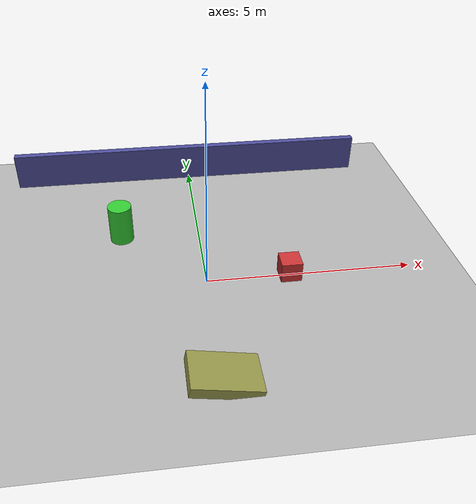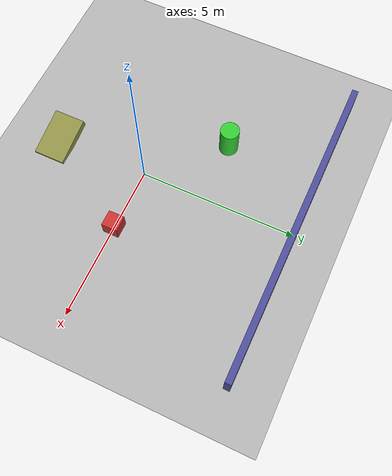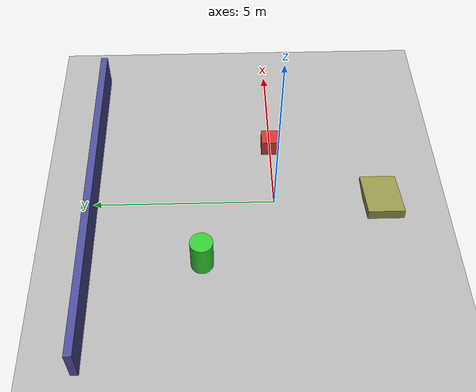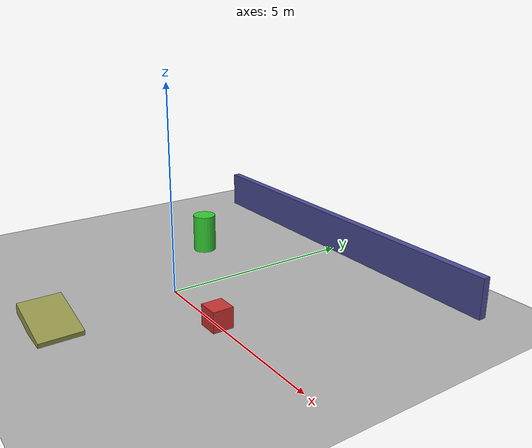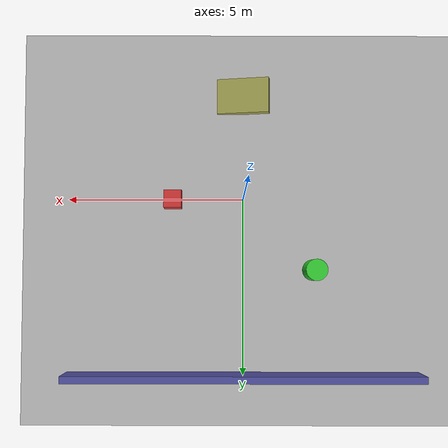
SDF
<?xml version="1.0" ?>
<!--
  Complex World - With Obstacles and Varied Terrain
  Purpose: Testing robot navigation and collision avoidance
  Features: Multiple obstacles, ramps, walls
-->
<sdf version="1.9">
  <world name="complex_world">

    <!-- Physics: Bullet engine with 1ms timestep -->
    <physics name="1ms" type="bullet">
      <max_step_size>0.001</max_step_size>
      <real_time_factor>1.0</real_time_factor>
      <real_time_update_rate>1000</real_time_update_rate>
    </physics>

    <gravity>0 0 -9.81</gravity>

    <!-- Ground Plane -->
    <model name="ground_plane">
      <static>true</static>
      <link name="link">
        <collision name="collision">
          <geometry>
            <plane>
              <normal>0 0 1</normal>
              <size>100 100</size>
            </plane>
          </geometry>
        </collision>
        <visual name="visual">
          <geometry>
            <plane>
              <normal>0 0 1</normal>
              <size>100 100</size>
            </plane>
          </geometry>
          <material>
            <ambient>0.5 0.5 0.5 1</ambient>
            <diffuse>0.7 0.7 0.7 1</diffuse>
          </material>
        </visual>
      </link>
    </model>

    <!-- Obstacle 1: Box -->
    <model name="box_obstacle">
      <static>true</static>
      <pose>2 0 0.25 0 0 0</pose>
      <link name="link">
        <collision name="collision">
          <geometry>
            <box>
              <size>0.5 0.5 0.5</size>
            </box>
          </geometry>
        </collision>
        <visual name="visual">
          <geometry>
            <box>
              <size>0.5 0.5 0.5</size>
            </box>
          </geometry>
          <material>
            <ambient>0.8 0.2 0.2 1</ambient>
            <diffuse>0.8 0.2 0.2 1</diffuse>
          </material>
        </visual>
      </link>
    </model>

    <!-- Obstacle 2: Cylinder -->
    <model name="cylinder_obstacle">
      <static>true</static>
      <pose>-2 2 0.5 0 0 0</pose>
      <link name="link">
        <collision name="collision">
          <geometry>
            <cylinder>
              <radius>0.3</radius>
              <length>1.0</length>
            </cylinder>
          </geometry>
        </collision>
        <visual name="visual">
          <geometry>
            <cylinder>
              <radius>0.3</radius>
              <length>1.0</length>
            </cylinder>
          </geometry>
          <material>
            <ambient>0.2 0.8 0.2 1</ambient>
            <diffuse>0.2 0.8 0.2 1</diffuse>
          </material>
        </visual>
      </link>
    </model>

    <!-- Ramp for walking up -->
    <model name="ramp">
      <static>true</static>
      <pose>0 -3 0.125 0 0.2 0</pose>
      <link name="link">
        <collision name="collision">
          <geometry>
            <box>
              <size>1.5 1.0 0.25</size>
            </box>
          </geometry>
        </collision>
        <visual name="visual">
          <geometry>
            <box>
              <size>1.5 1.0 0.25</size>
            </box>
          </geometry>
          <material>
            <ambient>0.6 0.6 0.3 1</ambient>
            <diffuse>0.6 0.6 0.3 1</diffuse>
          </material>
        </visual>
      </link>
    </model>

    <!-- Wall -->
    <model name="wall">
      <static>true</static>
      <pose>0 5 0.5 0 0 0</pose>
      <link name="link">
        <collision name="collision">
          <geometry>
            <box>
              <size>10 0.2 1.0</size>
            </box>
          </geometry>
        </collision>
        <visual name="visual">
          <geometry>
            <box>
              <size>10 0.2 1.0</size>
            </box>
          </geometry>
          <material>
            <ambient>0.3 0.3 0.6 1</ambient>
            <diffuse>0.3 0.3 0.6 1</diffuse>
          </material>
        </visual>
      </link>
    </model>

    <!-- Lighting -->
    <light type="directional" name="sun">
      <cast_shadows>true</cast_shadows>
      <pose>0 0 10 0 0 0</pose>
      <diffuse>1.0 1.0 1.0 1</diffuse>
      <specular>0.5 0.5 0.5 1</specular>
      <direction>-0.5 0.1 -0.9</direction>
    </light>

    <light type="point" name="point_light_1">
      <pose>3 3 3 0 0 0</pose>
      <diffuse>0.6 0.6 0.6 1</diffuse>
      <attenuation>
        <range>20</range>
        <linear>0.1</linear>
      </attenuation>
    </light>

    <!-- Scene -->
    <scene>
      <ambient>0.4 0.4 0.4 1</ambient>
      <background>0.5 0.7 0.9 1</background>
      <shadows>true</shadows>
      <grid>true</grid>
    </scene>

  </world>
</sdf>
